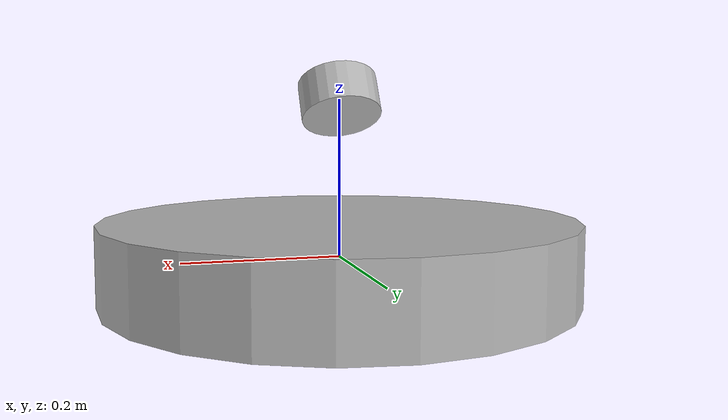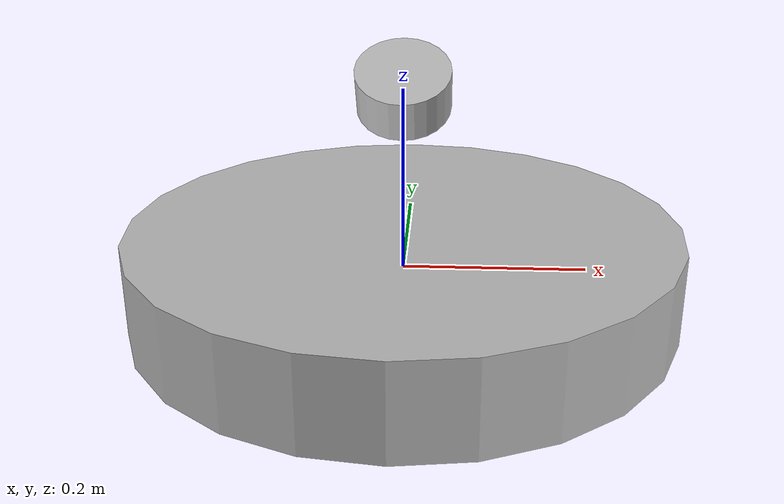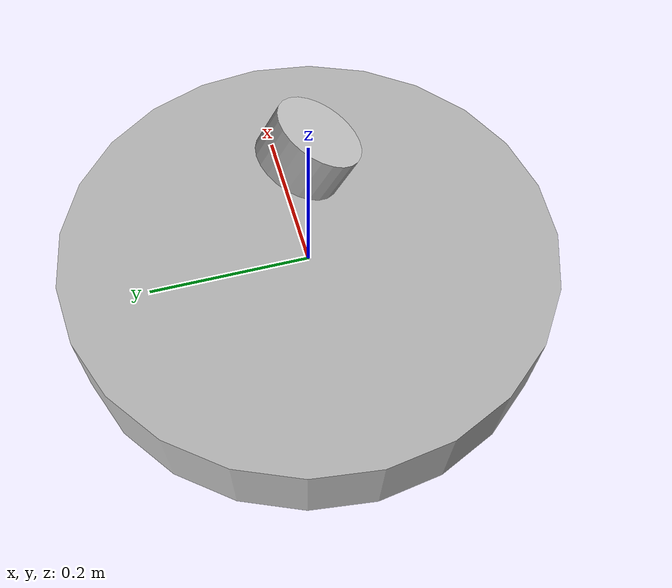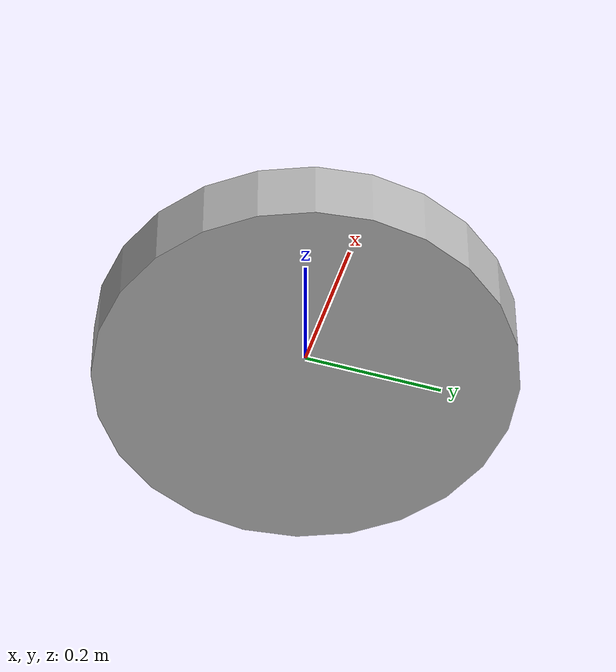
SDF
<sdf version='1.6'>
  <model name='test_ray'>
    <link name='base_link'>
      <pose frame=''>0 0 0 0 -0 0</pose>
      <inertial>
        <pose frame=''>0 0 0 0 -0 0</pose>
        <mass>0.1</mass>
        <inertia>
          <ixx>0.1</ixx>
          <ixy>0</ixy>
          <ixz>0</ixz>
          <iyy>0.1</iyy>
          <iyz>0</iyz>
          <izz>0.1</izz>
        </inertia>
      </inertial>
      <collision name='base_link_collision'>
        <pose frame=''>0 0 0 0 -0 0</pose>
        <geometry>
          <cylinder>
            <length>0.1</length>
            <radius>0.3</radius>
          </cylinder>
        </geometry>
      </collision>
      <visual name='base_link_visual'>
        <pose frame=''>0 0 0 0 -0 0</pose>
        <geometry>
          <cylinder>
            <length>0.1</length>
            <radius>0.3</radius>
          </cylinder>
        </geometry>
      </visual>
    </link>
    <link name='lidar_link'>
      <pose frame=''>0 0 0.2 0.52359877559 -0 0</pose>
      <inertial>
        <pose frame=''>0 0 0 0 -0 0</pose>
        <mass>0.1</mass>
        <inertia>
          <ixx>0.1</ixx>
          <ixy>0</ixy>
          <ixz>0</ixz>
          <iyy>0.1</iyy>
          <iyz>0</iyz>
          <izz>0.1</izz>
        </inertia>
      </inertial>
      <collision name='lidar_link_collision'>
        <pose frame=''>0 0 0 0 -0 0</pose>
        <geometry>
          <cylinder>
            <length>0.05</length>
            <radius>0.05</radius>
          </cylinder>
        </geometry>
        <surface>
          <contact>
            <ode/>
          </contact>
          <friction>
            <ode/>
          </friction>
        </surface>
      </collision>
      <visual name='lidar_link_visual'>
        <pose frame=''>0 0 0 0 -0 0</pose>
        <geometry>
          <cylinder>
            <length>0.05</length>
            <radius>0.05</radius>
          </cylinder>
        </geometry>
        <material>
          <script>
            <uri>__default__</uri>
            <name>__default__</name>
          </script>
        </material>
      </visual>
      <gravity>1</gravity>
      <velocity_decay/>
      <self_collide>0</self_collide>
      <sensor name='self_made_lidar' type='ray'>
        <always_on>1</always_on>
        <visualize>1</visualize>
        <update_rate>40</update_rate>
        <ray>
          <scan>
            <horizontal>
              <samples>720</samples>
              <resolution>1</resolution>
              <min_angle>0</min_angle>
              <max_angle>1.5708</max_angle>
            </horizontal>
          </scan>
          <range>
            <min>0.1</min>
            <max>10</max>
            <resolution>0.01</resolution>
          </range>
        </ray>
        <plugin name='self_made_lidar_controller' filename='libgazebo_ros_laser.so'>
          <topicName>/test_ray/laser/scan</topicName>
          <frameName>lidar_link</frameName>
        </plugin>
      </sensor>
    </link>
    <joint name='erlecopter_lidar_joint_1' type='revolute'>
      <child>lidar_link</child>
      <parent>base_link</parent>
      <axis>
        <xyz>0 0 1</xyz>
        <limit>
          <lower>-1e+16</lower>
          <upper>1e+16</upper>
        </limit>
        <dynamics>
          <spring_reference>0</spring_reference>
          <spring_stiffness>0</spring_stiffness>
        </dynamics>
        <use_parent_model_frame>1</use_parent_model_frame>
      </axis>
    </joint>
    <plugin name='lidar_test_plugin' filename='liblidar_test_plugin_2.so'>
    	<jointName>erlecopter_lidar_joint_1</jointName>
    </plugin>
    <static>0</static>
    <plugin name='joint_state_publisher' filename='libgazebo_ros_joint_state_publisher.so'>
      <jointName>erlecopter_lidar_joint_1</jointName>
    </plugin>
  </model>
</sdf>
